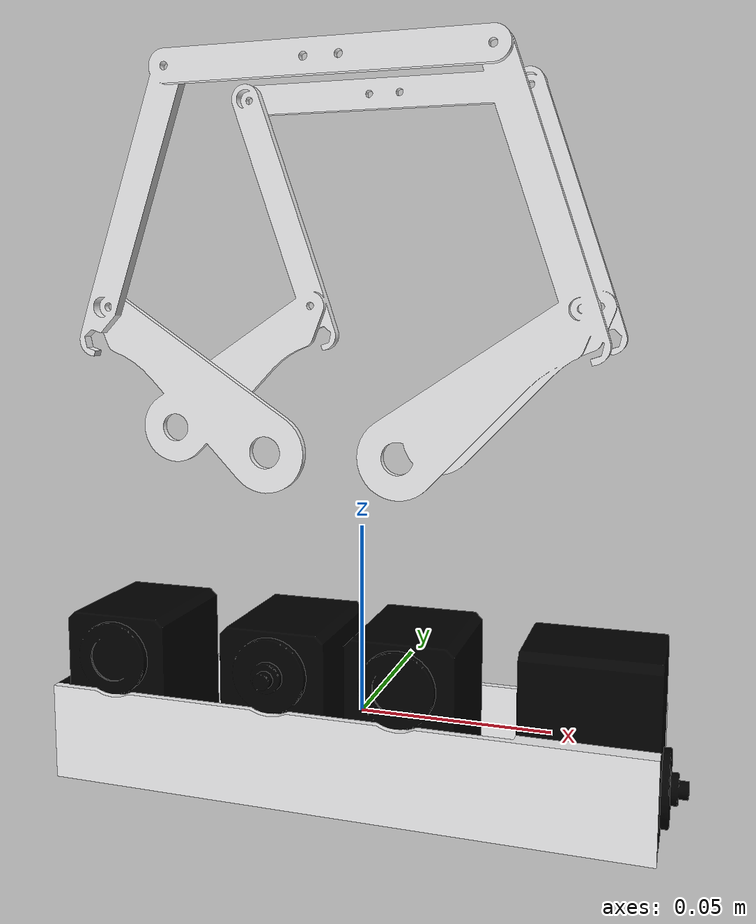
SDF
<?xml version="1.0"?>
<sdf version="1.7">
  <model name="simpleLeg">

    <!-- LEG LINK -->
    <!-- Así hay un link leg genérico que no depende de lo que haya después -->
    <link name="lLink">
      <pose>0 0 0 0 0 0</pose>
    </link>

    <!-- INCLUDE MOTORS-->
    <link name="mLink">
      <pose relative_to="j_l_m">0 0 0 0 0 0</pose>
      <inertial>
        <mass>0.393</mass>
        <inertia>
          <ixx>0.00012</ixx>
          <ixy>0</ixy>
          <ixz>0</ixz>
          <iyy>0.00096</iyy>
          <iyz>0</iyz>
          <izz>0.00094</izz>
        </inertia>
      </inertial>
      <collision name="collision">
        <geometry>
          <mesh>
            <scale> 0.001 0.001 0.001</scale>
            <uri>model://rm2_simple_leg/meshes/motors.stl</uri>
          </mesh>
        </geometry>
      </collision>
      <visual name="visual">
        <transparency>0.01</transparency>
        <geometry>
          <mesh>
            <uri>model://rm2_simple_leg/meshes/motors.dae</uri>
          </mesh>
        </geometry>
      </visual>
    </link>

    <!-- JOINT LEG - MOTORS -->
    <joint name="j_l_m" type="fixed">
      <pose relative_to="lLink">0 0 0 0 0 0</pose>
      <parent>lLink</parent>
      <child>mLink</child>
    </joint>

    <!-- INCLUDE FRAMES -->
    <link name="fLink">
      <!-- Posición del centro de masas de frames respecto al eje de unión con motors negativo en x e y -->
      <pose relative_to="j_m_f">-0.0162 -0.019 0.0447 0 0 0</pose>
      <inertial>
        <mass>0.044</mass>
        <inertia>
          <ixx>0.00007</ixx>
          <ixy>0</ixy>
          <ixz>0</ixz>
          <iyy>0.00012</iyy>
          <iyz>0</iyz>
          <izz>0.00009</izz>
        </inertia>
      </inertial>
      <collision name="collision">
        <geometry>
          <box>
            <size>0.13 0.047 0.096</size>
          </box>
        </geometry>
      </collision>
      <visual name="visual">
        <transparency>0.01</transparency>
        <geometry>
          <mesh>
            <uri>model://rm2_simple_leg/meshes/frames.dae</uri>
          </mesh>
        </geometry>
      </visual>
    </link>

    <!-- JOINT MOTORS - FRAMES -->
    <joint name="j_m_f" type="fixed">
       <!-- Posicón del eje de unión con frames negativo en x e y respecto al centro de masas de motors  -->
      <pose relative_to="mLink">0.0153 0.019 0.0135 0 0 0</pose>
      <parent>mLink</parent>
      <child>fLink</child>
    </joint>

    <!-- INCLUDE SIMPLE FRAMES -->
      <!-- Posición del centro de masas de frames respecto al eje de unión con motors negativo en x e y -->
  </model>
</sdf>
